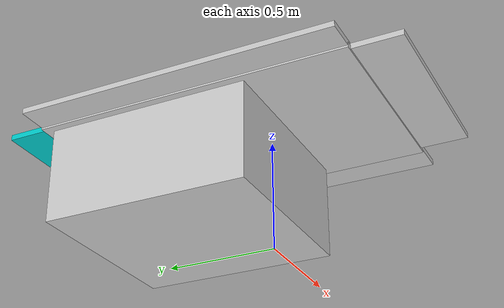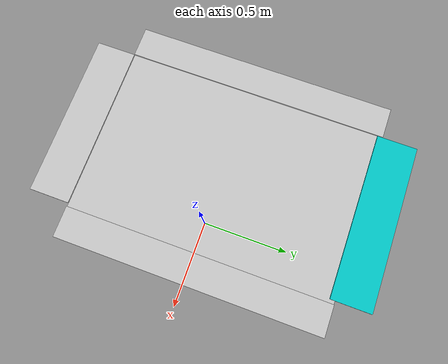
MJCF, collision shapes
<mujoco model="living_room_arena">
  <asset>
    <!-- ceramic table texture and material-->
    <texture file="../../textures/seamless_wood_planks_floor.png" type="cube" name="tex-table"/>
    <material name="table_texture" reflectance="0.0" shininess="0.0" specular="0.2" texrepeat="1 1" texture="tex-table" />
    <!-- steel legs -->
    <texture file="../../textures/seamless_wood_planks_floor.png" type="cube" name="tex-table-legs"/>
    <material name="table_legs" reflectance="0.8" shininess="0.8" texrepeat="1 1" texture="tex-table-legs" />
    <!-- added table texture and material for domain randomization -->
    <texture  name="textable" builtin="flat" height="512" width="512" rgb1="0.5 0.5 0.5" rgb2="0.5 0.5 0.5"/>
    <material name="table_mat" texture="textable" />

    <texture file="living_room_table/living_room_table_texture.png" name="tex-living_room_table" type="2d"/>
    <material name="living_room_table" reflectance="0.5" texrepeat="1 1" texture="tex-living_room_table" texuniform="false"/>
    <mesh file="living_room_table/living_room_table.obj" name="living_room_table_vis" scale="1.5 1.5 1.5"/>
  </asset>
  <worldbody>
    <body name="living_room_table" pos="0 0 0" quat="1 0.0 0.0 0.0">
    <body name="living_room_table_col" pos="-0.25 0.25 0" quat="0.707 0.0 0.0 0.707">
    <geom solimp="0.998 0.998 0.001" solref="0.001 1" density="100" friction="0.95 0.3 0.1" type="mesh" mesh="living_room_table_vis" conaffinity="0" contype="0" group="0" material="living_room_table"/>
    <geom solimp="0.998 0.998 0.001" solref="0.001 1" density="100" friction="0.95 0.3 0.1" type="box" pos="-0.19761 0.00000 0.41652" quat="0.70711 0.00000 0.70711 0.00000" size="0.01184 0.44432 0.67171" group="1" rgba="0.8 0.8 0.8 0.3"/>
    <geom solimp="0.998 0.998 0.001" solref="0.001 1" density="100" friction="0.95 0.3 0.1" type="box" pos="0.54936 -0.00000 0.42492" quat="0.50000 0.50000 0.50000 -0.50000" size="0.01184 0.10133 0.41675" group="1" rgba="0 0.8 0.8 0.3"/>
    <geom solimp="0.998 0.998 0.001" solref="0.001 1" density="100" friction="0.95 0.3 0.1" type="box" pos="-0.97006 0.00000 0.42492" quat="0.50000 -0.50000 -0.50000 -0.50000" size="0.01184 0.10133 0.41675" group="1" rgba="0.8 0.8 0.8 0.3"/>
    <geom solimp="0.998 0.998 0.001" solref="0.001 1" density="100" friction="0.95 0.3 0.1" type="box" pos="-0.19761 -0.51121 0.42492" quat="0.70711 0.00000 0.70711 0.00000" size="0.01184 0.07752 0.67171" group="1" rgba="0.8 0.8 0.8 0.3"/>
    <geom solimp="0.998 0.998 0.001" solref="0.001 1" density="100" friction="0.95 0.3 0.1" type="box" pos="-0.19761 0.49665 0.42492" quat="0.70711 0.00000 0.70711 0.00000" size="0.01184 0.07752 0.67171" group="1" rgba="0.8 0.8 0.8 0.3"/>
    <geom solimp="0.998 0.998 0.001" solref="0.001 1" density="100" friction="0.95 0.3 0.1" type="box" pos="-0.00000 0.00000 0.20414" quat="0.70711 -0.00000 -0.70711 -0.00000" size="0.20884 0.41162 0.43516" group="1" rgba="0.8 0.8 0.8 0.3"/>
    </body>
    </body>
  </worldbody>
</mujoco>
